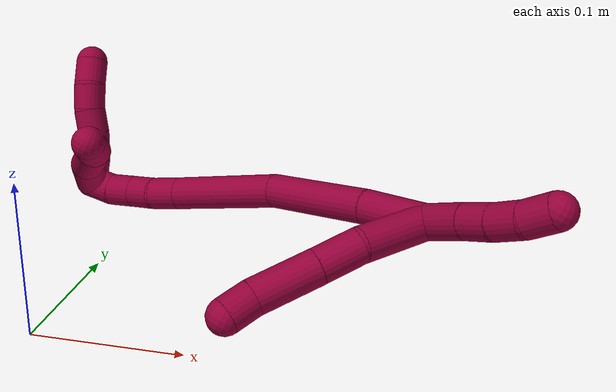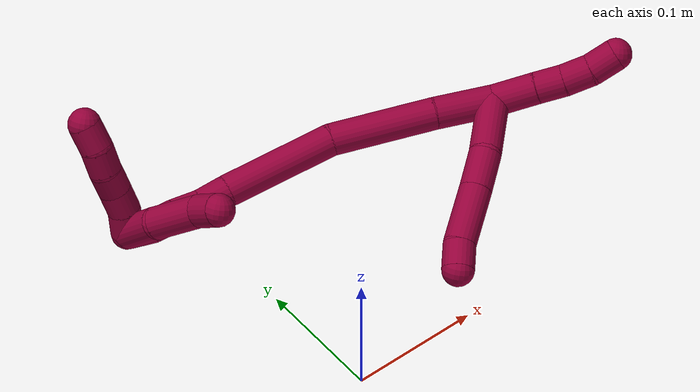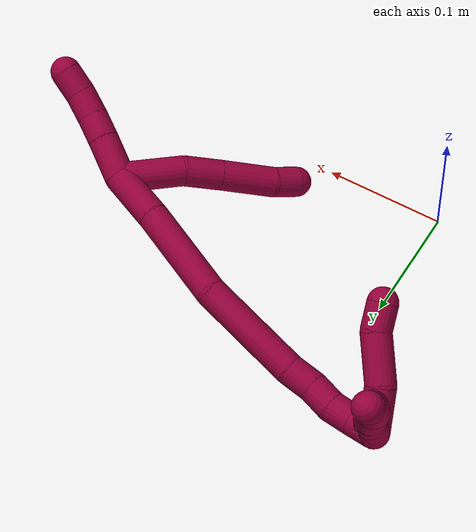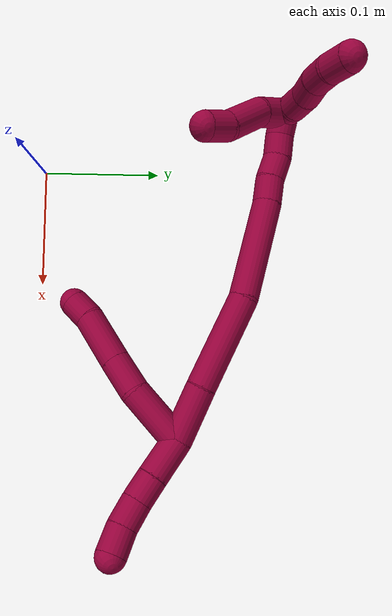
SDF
<sdf version="1.7">
 <world name="default">
  <model name="8">
   <static>0</static>
   <link name="8">
    <collision name="collision-cylinder-e_1_2_8">
     <pose>-0.002844 -0.02132 -0.014574 2.17042 -0.109704 -0.207339</pose>
     <geometry><cylinder><radius>0.0125</radius><length>0.051962</length></cylinder></geometry>
     <surface>
      <friction><ode><mu>1.16</mu><mu2>1.16</mu2><slip1>0</slip1><slip2>0</slip2></ode></friction>
      <contact><ode><kp>1e+06</kp><kd>1</kd><max_vel>0</max_vel><min_depth>0.001</min_depth></ode></contact>
     </surface>
    </collision>
    <visual name="visual-cylinder-e_1_2_8">
     <pose>-0.002844 -0.02132 -0.014574 2.17042 -0.109704 -0.207339</pose>
     <geometry><cylinder><radius>0.0125</radius><length>0.051962</length></cylinder></geometry>
     <material><ambient>0.584314 0 0.227451 1</ambient></material>
    </visual>
    <collision name="collision-cylinder-e_2_8_9">
     <pose>-0.008445 -0.053019 -0.040464 2.39934 -0.177556 -0.449719</pose>
     <geometry><cylinder><radius>0.0125</radius><length>0.031203</length></cylinder></geometry>
     <surface>
      <friction><ode><mu>1.16</mu><mu2>1.16</mu2><slip1>0</slip1><slip2>0</slip2></ode></friction>
      <contact><ode><kp>1e+06</kp><kd>1</kd><max_vel>0</max_vel><min_depth>0.001</min_depth></ode></contact>
     </surface>
    </collision>
    <visual name="visual-cylinder-e_2_8_9">
     <pose>-0.008445 -0.053019 -0.040464 2.39934 -0.177556 -0.449719</pose>
     <geometry><cylinder><radius>0.0125</radius><length>0.031203</length></cylinder></geometry>
     <material><ambient>0.584314 0 0.227451 1</ambient></material>
    </visual>
    <collision name="collision-cylinder-e_3_9_10">
     <pose>-0.015796 -0.078582 -0.068397 2.40125 -0.201403 -0.509449</pose>
     <geometry><cylinder><radius>0.0125</radius><length>0.045945</length></cylinder></geometry>
     <surface>
      <friction><ode><mu>1.16</mu><mu2>1.16</mu2><slip1>0</slip1><slip2>0</slip2></ode></friction>
      <contact><ode><kp>1e+06</kp><kd>1</kd><max_vel>0</max_vel><min_depth>0.001</min_depth></ode></contact>
     </surface>
    </collision>
    <visual name="visual-cylinder-e_3_9_10">
     <pose>-0.015796 -0.078582 -0.068397 2.40125 -0.201403 -0.509449</pose>
     <geometry><cylinder><radius>0.0125</radius><length>0.045945</length></cylinder></geometry>
     <material><ambient>0.584314 0 0.227451 1</ambient></material>
    </visual>
    <collision name="collision-cylinder-e_4_10_6">
     <pose>-0.020328 -0.100914 -0.092628 2.38774 0.00603 0.015233</pose>
     <geometry><cylinder><radius>0.0125</radius><length>0.02089</length></cylinder></geometry>
     <surface>
      <friction><ode><mu>1.16</mu><mu2>1.16</mu2><slip1>0</slip1><slip2>0</slip2></ode></friction>
      <contact><ode><kp>1e+06</kp><kd>1</kd><max_vel>0</max_vel><min_depth>0.001</min_depth></ode></contact>
     </surface>
    </collision>
    <visual name="visual-cylinder-e_4_10_6">
     <pose>-0.020328 -0.100914 -0.092628 2.38774 0.00603 0.015233</pose>
     <geometry><cylinder><radius>0.0125</radius><length>0.02089</length></cylinder></geometry>
     <material><ambient>0.584314 0 0.227451 1</ambient></material>
    </visual>
    <collision name="collision-cylinder-e_1_2_11">
     <pose>0.015138 -0.002408 0.008024 0.291522 1.06535 0.172655</pose>
     <geometry><cylinder><radius>0.0125</radius><length>0.034603</length></cylinder></geometry>
     <surface>
      <friction><ode><mu>1.16</mu><mu2>1.16</mu2><slip1>0</slip1><slip2>0</slip2></ode></friction>
      <contact><ode><kp>1e+06</kp><kd>1</kd><max_vel>0</max_vel><min_depth>0.001</min_depth></ode></contact>
     </surface>
    </collision>
    <visual name="visual-cylinder-e_1_2_11">
     <pose>0.015138 -0.002408 0.008024 0.291522 1.06535 0.172655</pose>
     <geometry><cylinder><radius>0.0125</radius><length>0.034603</length></cylinder></geometry>
     <material><ambient>0.584314 0 0.227451 1</ambient></material>
    </visual>
    <collision name="collision-cylinder-e_2_11_12">
     <pose>0.039886 -0.005932 0.020747 0.233272 1.10505 0.144237</pose>
     <geometry><cylinder><radius>0.0125</radius><length>0.021511</length></cylinder></geometry>
     <surface>
      <friction><ode><mu>1.16</mu><mu2>1.16</mu2><slip1>0</slip1><slip2>0</slip2></ode></friction>
      <contact><ode><kp>1e+06</kp><kd>1</kd><max_vel>0</max_vel><min_depth>0.001</min_depth></ode></contact>
     </surface>
    </collision>
    <visual name="visual-cylinder-e_2_11_12">
     <pose>0.039886 -0.005932 0.020747 0.233272 1.10505 0.144237</pose>
     <geometry><cylinder><radius>0.0125</radius><length>0.021511</length></cylinder></geometry>
     <material><ambient>0.584314 0 0.227451 1</ambient></material>
    </visual>
    <collision name="collision-cylinder-e_3_12_13">
     <pose>0.058772 -0.008003 0.031245 0.163165 1.00613 0.089927</pose>
     <geometry><cylinder><radius>0.0125</radius><length>0.021962</length></cylinder></geometry>
     <surface>
      <friction><ode><mu>1.16</mu><mu2>1.16</mu2><slip1>0</slip1><slip2>0</slip2></ode></friction>
      <contact><ode><kp>1e+06</kp><kd>1</kd><max_vel>0</max_vel><min_depth>0.001</min_depth></ode></contact>
     </surface>
    </collision>
    <visual name="visual-cylinder-e_3_12_13">
     <pose>0.058772 -0.008003 0.031245 0.163165 1.00613 0.089927</pose>
     <geometry><cylinder><radius>0.0125</radius><length>0.021962</length></cylinder></geometry>
     <material><ambient>0.584314 0 0.227451 1</ambient></material>
    </visual>
    <collision name="collision-cylinder-e_4_13_5">
     <pose>0.076181 -0.009101 0.044392 0.019486 0.835878 0.008654</pose>
     <geometry><cylinder><radius>0.0125</radius><length>0.021924</length></cylinder></geometry>
     <surface>
      <friction><ode><mu>1.16</mu><mu2>1.16</mu2><slip1>0</slip1><slip2>0</slip2></ode></friction>
      <contact><ode><kp>1e+06</kp><kd>1</kd><max_vel>0</max_vel><min_depth>0.001</min_depth></ode></contact>
     </surface>
    </collision>
    <visual name="visual-cylinder-e_4_13_5">
     <pose>0.076181 -0.009101 0.044392 0.019486 0.835878 0.008654</pose>
     <geometry><cylinder><radius>0.0125</radius><length>0.021924</length></cylinder></geometry>
     <material><ambient>0.584314 0 0.227451 1</ambient></material>
    </visual>
    <collision name="collision-cylinder-e_1_2_14">
     <pose>-0.022054 -0.003901 -0.006882 2.62593 -1.22638 -2.42449</pose>
     <geometry><cylinder><radius>0.0125</radius><length>0.046859</length></cylinder></geometry>
     <surface>
      <friction><ode><mu>1.16</mu><mu2>1.16</mu2><slip1>0</slip1><slip2>0</slip2></ode></friction>
      <contact><ode><kp>1e+06</kp><kd>1</kd><max_vel>0</max_vel><min_depth>0.001</min_depth></ode></contact>
     </surface>
    </collision>
    <visual name="visual-cylinder-e_1_2_14">
     <pose>-0.022054 -0.003901 -0.006882 2.62593 -1.22638 -2.42449</pose>
     <geometry><cylinder><radius>0.0125</radius><length>0.046859</length></cylinder></geometry>
     <material><ambient>0.584314 0 0.227451 1</ambient></material>
    </visual>
    <collision name="collision-cylinder-e_2_14_15">
     <pose>-0.081858 -0.012247 -0.028095 2.84085 -1.1925 -2.70228</pose>
     <geometry><cylinder><radius>0.0125</radius><length>0.081246</length></cylinder></geometry>
     <surface>
      <friction><ode><mu>1.16</mu><mu2>1.16</mu2><slip1>0</slip1><slip2>0</slip2></ode></friction>
      <contact><ode><kp>1e+06</kp><kd>1</kd><max_vel>0</max_vel><min_depth>0.001</min_depth></ode></contact>
     </surface>
    </collision>
    <visual name="visual-cylinder-e_2_14_15">
     <pose>-0.081858 -0.012247 -0.028095 2.84085 -1.1925 -2.70228</pose>
     <geometry><cylinder><radius>0.0125</radius><length>0.081246</length></cylinder></geometry>
     <material><ambient>0.584314 0 0.227451 1</ambient></material>
    </visual>
    <collision name="collision-cylinder-e_3_15_16">
     <pose>-0.156035 -0.026321 -0.064707 2.73365 -0.982994 -2.40413</pose>
     <geometry><cylinder><radius>0.0125</radius><length>0.087545</length></cylinder></geometry>
     <surface>
      <friction><ode><mu>1.16</mu><mu2>1.16</mu2><slip1>0</slip1><slip2>0</slip2></ode></friction>
      <contact><ode><kp>1e+06</kp><kd>1</kd><max_vel>0</max_vel><min_depth>0.001</min_depth></ode></contact>
     </surface>
    </collision>
    <visual name="visual-cylinder-e_3_15_16">
     <pose>-0.156035 -0.026321 -0.064707 2.73365 -0.982994 -2.40413</pose>
     <geometry><cylinder><radius>0.0125</radius><length>0.087545</length></cylinder></geometry>
     <material><ambient>0.584314 0 0.227451 1</ambient></material>
    </visual>
    <collision name="collision-cylinder-e_4_16_17">
     <pose>-0.20156 -0.039877 -0.092717 2.54073 -0.918874 -2.02268</pose>
     <geometry><cylinder><radius>0.0125</radius><length>0.022895</length></cylinder></geometry>
     <surface>
      <friction><ode><mu>1.16</mu><mu2>1.16</mu2><slip1>0</slip1><slip2>0</slip2></ode></friction>
      <contact><ode><kp>1e+06</kp><kd>1</kd><max_vel>0</max_vel><min_depth>0.001</min_depth></ode></contact>
     </surface>
    </collision>
    <visual name="visual-cylinder-e_4_16_17">
     <pose>-0.20156 -0.039877 -0.092717 2.54073 -0.918874 -2.02268</pose>
     <geometry><cylinder><radius>0.0125</radius><length>0.022895</length></cylinder></geometry>
     <material><ambient>0.584314 0 0.227451 1</ambient></material>
    </visual>
    <collision name="collision-cylinder-e_5_17_18">
     <pose>-0.219949 -0.045842 -0.102825 2.70596 -1.09127 -2.44243</pose>
     <geometry><cylinder><radius>0.0125</radius><length>0.020941</length></cylinder></geometry>
     <surface>
      <friction><ode><mu>1.16</mu><mu2>1.16</mu2><slip1>0</slip1><slip2>0</slip2></ode></friction>
      <contact><ode><kp>1e+06</kp><kd>1</kd><max_vel>0</max_vel><min_depth>0.001</min_depth></ode></contact>
     </surface>
    </collision>
    <visual name="visual-cylinder-e_5_17_18">
     <pose>-0.219949 -0.045842 -0.102825 2.70596 -1.09127 -2.44243</pose>
     <geometry><cylinder><radius>0.0125</radius><length>0.020941</length></cylinder></geometry>
     <material><ambient>0.584314 0 0.227451 1</ambient></material>
    </visual>
    <collision name="collision-cylinder-e_6_18_19">
     <pose>-0.237337 -0.052107 -0.111426 2.35568 -0.935249 -1.76693</pose>
     <geometry><cylinder><radius>0.0125</radius><length>0.020127</length></cylinder></geometry>
     <surface>
      <friction><ode><mu>1.16</mu><mu2>1.16</mu2><slip1>0</slip1><slip2>0</slip2></ode></friction>
      <contact><ode><kp>1e+06</kp><kd>1</kd><max_vel>0</max_vel><min_depth>0.001</min_depth></ode></contact>
     </surface>
    </collision>
    <visual name="visual-cylinder-e_6_18_19">
     <pose>-0.237337 -0.052107 -0.111426 2.35568 -0.935249 -1.76693</pose>
     <geometry><cylinder><radius>0.0125</radius><length>0.020127</length></cylinder></geometry>
     <material><ambient>0.584314 0 0.227451 1</ambient></material>
    </visual>
    <collision name="collision-cylinder-e_7_19_1">
     <pose>-0.254367 -0.060875 -0.117522 1.96205 -1.06787 -1.44718</pose>
     <geometry><cylinder><radius>0.0125</radius><length>0.020387</length></cylinder></geometry>
     <surface>
      <friction><ode><mu>1.16</mu><mu2>1.16</mu2><slip1>0</slip1><slip2>0</slip2></ode></friction>
      <contact><ode><kp>1e+06</kp><kd>1</kd><max_vel>0</max_vel><min_depth>0.001</min_depth></ode></contact>
     </surface>
    </collision>
    <visual name="visual-cylinder-e_7_19_1">
     <pose>-0.254367 -0.060875 -0.117522 1.96205 -1.06787 -1.44718</pose>
     <geometry><cylinder><radius>0.0125</radius><length>0.020387</length></cylinder></geometry>
     <material><ambient>0.584314 0 0.227451 1</ambient></material>
    </visual>
    <collision name="collision-cylinder-e_1_1_20">
     <pose>-0.25394 -0.077961 -0.109797 0.917654 0.534899 0.269084</pose>
     <geometry><cylinder><radius>0.0125</radius><length>0.036718</length></cylinder></geometry>
     <surface>
      <friction><ode><mu>1.16</mu><mu2>1.16</mu2><slip1>0</slip1><slip2>0</slip2></ode></friction>
      <contact><ode><kp>1e+06</kp><kd>1</kd><max_vel>0</max_vel><min_depth>0.001</min_depth></ode></contact>
     </surface>
    </collision>
    <visual name="visual-cylinder-e_1_1_20">
     <pose>-0.25394 -0.077961 -0.109797 0.917654 0.534899 0.269084</pose>
     <geometry><cylinder><radius>0.0125</radius><length>0.036718</length></cylinder></geometry>
     <material><ambient>0.584314 0 0.227451 1</ambient></material>
    </visual>
    <collision name="collision-cylinder-e_2_20_21">
     <pose>-0.230018 -0.10046 -0.089809 0.764031 0.791382 0.332543</pose>
     <geometry><cylinder><radius>0.0125</radius><length>0.040948</length></cylinder></geometry>
     <surface>
      <friction><ode><mu>1.16</mu><mu2>1.16</mu2><slip1>0</slip1><slip2>0</slip2></ode></friction>
      <contact><ode><kp>1e+06</kp><kd>1</kd><max_vel>0</max_vel><min_depth>0.001</min_depth></ode></contact>
     </surface>
    </collision>
    <visual name="visual-cylinder-e_2_20_21">
     <pose>-0.230018 -0.10046 -0.089809 0.764031 0.791382 0.332543</pose>
     <geometry><cylinder><radius>0.0125</radius><length>0.040948</length></cylinder></geometry>
     <material><ambient>0.584314 0 0.227451 1</ambient></material>
    </visual>
    <collision name="collision-cylinder-e_3_21_4">
     <pose>-0.209115 -0.118632 -0.075293 1.10546 0.603682 0.379505</pose>
     <geometry><cylinder><radius>0.0125</radius><length>0.022334</length></cylinder></geometry>
     <surface>
      <friction><ode><mu>1.16</mu><mu2>1.16</mu2><slip1>0</slip1><slip2>0</slip2></ode></friction>
      <contact><ode><kp>1e+06</kp><kd>1</kd><max_vel>0</max_vel><min_depth>0.001</min_depth></ode></contact>
     </surface>
    </collision>
    <visual name="visual-cylinder-e_3_21_4">
     <pose>-0.209115 -0.118632 -0.075293 1.10546 0.603682 0.379505</pose>
     <geometry><cylinder><radius>0.0125</radius><length>0.022334</length></cylinder></geometry>
     <material><ambient>0.584314 0 0.227451 1</ambient></material>
    </visual>
    <collision name="collision-cylinder-e_1_1_22">
     <pose>-0.265703 -0.067638 -0.109947 0.230875 -0.242808 -0.028292</pose>
     <geometry><cylinder><radius>0.0125</radius><length>0.02</length></cylinder></geometry>
     <surface>
      <friction><ode><mu>1.16</mu><mu2>1.16</mu2><slip1>0</slip1><slip2>0</slip2></ode></friction>
      <contact><ode><kp>1e+06</kp><kd>1</kd><max_vel>0</max_vel><min_depth>0.001</min_depth></ode></contact>
     </surface>
    </collision>
    <visual name="visual-cylinder-e_1_1_22">
     <pose>-0.265703 -0.067638 -0.109947 0.230875 -0.242808 -0.028292</pose>
     <geometry><cylinder><radius>0.0125</radius><length>0.02</length></cylinder></geometry>
     <material><ambient>0.584314 0 0.227451 1</ambient></material>
    </visual>
    <collision name="collision-cylinder-e_2_22_23">
     <pose>-0.272865 -0.072159 -0.092007 0.264495 -0.49578 -0.06731</pose>
     <geometry><cylinder><radius>0.0125</radius><length>0.02</length></cylinder></geometry>
     <surface>
      <friction><ode><mu>1.16</mu><mu2>1.16</mu2><slip1>0</slip1><slip2>0</slip2></ode></friction>
      <contact><ode><kp>1e+06</kp><kd>1</kd><max_vel>0</max_vel><min_depth>0.001</min_depth></ode></contact>
     </surface>
    </collision>
    <visual name="visual-cylinder-e_2_22_23">
     <pose>-0.272865 -0.072159 -0.092007 0.264495 -0.49578 -0.06731</pose>
     <geometry><cylinder><radius>0.0125</radius><length>0.02</length></cylinder></geometry>
     <material><ambient>0.584314 0 0.227451 1</ambient></material>
    </visual>
    <collision name="collision-cylinder-e_3_23_24">
     <pose>-0.281999 -0.078378 -0.075426 0.451133 -0.453047 -0.105678</pose>
     <geometry><cylinder><radius>0.0125</radius><length>0.02</length></cylinder></geometry>
     <surface>
      <friction><ode><mu>1.16</mu><mu2>1.16</mu2><slip1>0</slip1><slip2>0</slip2></ode></friction>
      <contact><ode><kp>1e+06</kp><kd>1</kd><max_vel>0</max_vel><min_depth>0.001</min_depth></ode></contact>
     </surface>
    </collision>
    <visual name="visual-cylinder-e_3_23_24">
     <pose>-0.281999 -0.078378 -0.075426 0.451133 -0.453047 -0.105678</pose>
     <geometry><cylinder><radius>0.0125</radius><length>0.02</length></cylinder></geometry>
     <material><ambient>0.584314 0 0.227451 1</ambient></material>
    </visual>
    <collision name="collision-cylinder-e_4_24_25">
     <pose>-0.290582 -0.084445 -0.058519 0.238914 -0.434072 -0.052923</pose>
     <geometry><cylinder><radius>0.0125</radius><length>0.02</length></cylinder></geometry>
     <surface>
      <friction><ode><mu>1.16</mu><mu2>1.16</mu2><slip1>0</slip1><slip2>0</slip2></ode></friction>
      <contact><ode><kp>1e+06</kp><kd>1</kd><max_vel>0</max_vel><min_depth>0.001</min_depth></ode></contact>
     </surface>
    </collision>
    <visual name="visual-cylinder-e_4_24_25">
     <pose>-0.290582 -0.084445 -0.058519 0.238914 -0.434072 -0.052923</pose>
     <geometry><cylinder><radius>0.0125</radius><length>0.02</length></cylinder></geometry>
     <material><ambient>0.584314 0 0.227451 1</ambient></material>
    </visual>
    <collision name="collision-cylinder-e_5_25_3">
     <pose>-0.300287 -0.086772 -0.041354 0.0215 -0.582307 -0.006443</pose>
     <geometry><cylinder><radius>0.0125</radius><length>0.02</length></cylinder></geometry>
     <surface>
      <friction><ode><mu>1.16</mu><mu2>1.16</mu2><slip1>0</slip1><slip2>0</slip2></ode></friction>
      <contact><ode><kp>1e+06</kp><kd>1</kd><max_vel>0</max_vel><min_depth>0.001</min_depth></ode></contact>
     </surface>
    </collision>
    <visual name="visual-cylinder-e_5_25_3">
     <pose>-0.300287 -0.086772 -0.041354 0.0215 -0.582307 -0.006443</pose>
     <geometry><cylinder><radius>0.0125</radius><length>0.02</length></cylinder></geometry>
     <material><ambient>0.584314 0 0.227451 1</ambient></material>
    </visual>
    <collision name="collision-sphere-3">
     <pose>-0.305786 -0.086951 -0.033004 0 -0 0</pose>
     <geometry><sphere><radius>0.0125</radius></sphere></geometry>
     <surface>
      <friction><ode><mu>1.16</mu><mu2>1.16</mu2><slip1>0</slip1><slip2>0</slip2></ode></friction>
      <contact><ode><kp>1e+06</kp><kd>1</kd><max_vel>0</max_vel><min_depth>0.001</min_depth></ode></contact>
     </surface>
    </collision>
    <visual name="visual-sphere-3">
     <pose>-0.305786 -0.086951 -0.033004 0 -0 0</pose>
     <geometry><sphere><radius>0.0125</radius></sphere></geometry>
     <material><ambient>0.584314 0 0.227451 1</ambient></material>
    </visual>
    <collision name="collision-sphere-25">
     <pose>-0.294787 -0.086592 -0.049704 0 -0 0</pose>
     <geometry><sphere><radius>0.0125</radius></sphere></geometry>
     <surface>
      <friction><ode><mu>1.16</mu><mu2>1.16</mu2><slip1>0</slip1><slip2>0</slip2></ode></friction>
      <contact><ode><kp>1e+06</kp><kd>1</kd><max_vel>0</max_vel><min_depth>0.001</min_depth></ode></contact>
     </surface>
    </collision>
    <visual name="visual-sphere-25">
     <pose>-0.294787 -0.086592 -0.049704 0 -0 0</pose>
     <geometry><sphere><radius>0.0125</radius></sphere></geometry>
     <material><ambient>0.584314 0 0.227451 1</ambient></material>
    </visual>
    <collision name="collision-sphere-24">
     <pose>-0.286376 -0.082298 -0.067334 0 -0 0</pose>
     <geometry><sphere><radius>0.0125</radius></sphere></geometry>
     <surface>
      <friction><ode><mu>1.16</mu><mu2>1.16</mu2><slip1>0</slip1><slip2>0</slip2></ode></friction>
      <contact><ode><kp>1e+06</kp><kd>1</kd><max_vel>0</max_vel><min_depth>0.001</min_depth></ode></contact>
     </surface>
    </collision>
    <visual name="visual-sphere-24">
     <pose>-0.286376 -0.082298 -0.067334 0 -0 0</pose>
     <geometry><sphere><radius>0.0125</radius></sphere></geometry>
     <material><ambient>0.584314 0 0.227451 1</ambient></material>
    </visual>
    <collision name="collision-sphere-23">
     <pose>-0.277622 -0.074458 -0.083517 0 -0 0</pose>
     <geometry><sphere><radius>0.0125</radius></sphere></geometry>
     <surface>
      <friction><ode><mu>1.16</mu><mu2>1.16</mu2><slip1>0</slip1><slip2>0</slip2></ode></friction>
      <contact><ode><kp>1e+06</kp><kd>1</kd><max_vel>0</max_vel><min_depth>0.001</min_depth></ode></contact>
     </surface>
    </collision>
    <visual name="visual-sphere-23">
     <pose>-0.277622 -0.074458 -0.083517 0 -0 0</pose>
     <geometry><sphere><radius>0.0125</radius></sphere></geometry>
     <material><ambient>0.584314 0 0.227451 1</ambient></material>
    </visual>
    <collision name="collision-sphere-22">
     <pose>-0.268107 -0.069859 -0.100497 0 -0 0</pose>
     <geometry><sphere><radius>0.0125</radius></sphere></geometry>
     <surface>
      <friction><ode><mu>1.16</mu><mu2>1.16</mu2><slip1>0</slip1><slip2>0</slip2></ode></friction>
      <contact><ode><kp>1e+06</kp><kd>1</kd><max_vel>0</max_vel><min_depth>0.001</min_depth></ode></contact>
     </surface>
    </collision>
    <visual name="visual-sphere-22">
     <pose>-0.268107 -0.069859 -0.100497 0 -0 0</pose>
     <geometry><sphere><radius>0.0125</radius></sphere></geometry>
     <material><ambient>0.584314 0 0.227451 1</ambient></material>
    </visual>
    <collision name="collision-sphere-4">
     <pose>-0.202776 -0.126848 -0.071168 0 -0 0</pose>
     <geometry><sphere><radius>0.0125</radius></sphere></geometry>
     <surface>
      <friction><ode><mu>1.16</mu><mu2>1.16</mu2><slip1>0</slip1><slip2>0</slip2></ode></friction>
      <contact><ode><kp>1e+06</kp><kd>1</kd><max_vel>0</max_vel><min_depth>0.001</min_depth></ode></contact>
     </surface>
    </collision>
    <visual name="visual-sphere-4">
     <pose>-0.202776 -0.126848 -0.071168 0 -0 0</pose>
     <geometry><sphere><radius>0.0125</radius></sphere></geometry>
     <material><ambient>0.584314 0 0.227451 1</ambient></material>
    </visual>
    <collision name="collision-sphere-21">
     <pose>-0.215454 -0.110416 -0.079418 0 -0 0</pose>
     <geometry><sphere><radius>0.0125</radius></sphere></geometry>
     <surface>
      <friction><ode><mu>1.16</mu><mu2>1.16</mu2><slip1>0</slip1><slip2>0</slip2></ode></friction>
      <contact><ode><kp>1e+06</kp><kd>1</kd><max_vel>0</max_vel><min_depth>0.001</min_depth></ode></contact>
     </surface>
    </collision>
    <visual name="visual-sphere-21">
     <pose>-0.215454 -0.110416 -0.079418 0 -0 0</pose>
     <geometry><sphere><radius>0.0125</radius></sphere></geometry>
     <material><ambient>0.584314 0 0.227451 1</ambient></material>
    </visual>
    <collision name="collision-sphere-20">
     <pose>-0.244581 -0.090505 -0.100199 0 -0 0</pose>
     <geometry><sphere><radius>0.0125</radius></sphere></geometry>
     <surface>
      <friction><ode><mu>1.16</mu><mu2>1.16</mu2><slip1>0</slip1><slip2>0</slip2></ode></friction>
      <contact><ode><kp>1e+06</kp><kd>1</kd><max_vel>0</max_vel><min_depth>0.001</min_depth></ode></contact>
     </surface>
    </collision>
    <visual name="visual-sphere-20">
     <pose>-0.244581 -0.090505 -0.100199 0 -0 0</pose>
     <geometry><sphere><radius>0.0125</radius></sphere></geometry>
     <material><ambient>0.584314 0 0.227451 1</ambient></material>
    </visual>
    <collision name="collision-sphere-11">
     <pose>0.030276 -0.004815 0.016048 0 -0 0</pose>
     <geometry><sphere><radius>0.0125</radius></sphere></geometry>
     <surface>
      <friction><ode><mu>1.16</mu><mu2>1.16</mu2><slip1>0</slip1><slip2>0</slip2></ode></friction>
      <contact><ode><kp>1e+06</kp><kd>1</kd><max_vel>0</max_vel><min_depth>0.001</min_depth></ode></contact>
     </surface>
    </collision>
    <visual name="visual-sphere-11">
     <pose>0.030276 -0.004815 0.016048 0 -0 0</pose>
     <geometry><sphere><radius>0.0125</radius></sphere></geometry>
     <material><ambient>0.584314 0 0.227451 1</ambient></material>
    </visual>
    <collision name="collision-sphere-6">
     <pose>-0.020265 -0.108063 -0.100243 0 -0 0</pose>
     <geometry><sphere><radius>0.0125</radius></sphere></geometry>
     <surface>
      <friction><ode><mu>1.16</mu><mu2>1.16</mu2><slip1>0</slip1><slip2>0</slip2></ode></friction>
      <contact><ode><kp>1e+06</kp><kd>1</kd><max_vel>0</max_vel><min_depth>0.001</min_depth></ode></contact>
     </surface>
    </collision>
    <visual name="visual-sphere-6">
     <pose>-0.020265 -0.108063 -0.100243 0 -0 0</pose>
     <geometry><sphere><radius>0.0125</radius></sphere></geometry>
     <material><ambient>0.584314 0 0.227451 1</ambient></material>
    </visual>
    <collision name="collision-sphere-10">
     <pose>-0.020391 -0.093765 -0.085013 0 -0 0</pose>
     <geometry><sphere><radius>0.0125</radius></sphere></geometry>
     <surface>
      <friction><ode><mu>1.16</mu><mu2>1.16</mu2><slip1>0</slip1><slip2>0</slip2></ode></friction>
      <contact><ode><kp>1e+06</kp><kd>1</kd><max_vel>0</max_vel><min_depth>0.001</min_depth></ode></contact>
     </surface>
    </collision>
    <visual name="visual-sphere-10">
     <pose>-0.020391 -0.093765 -0.085013 0 -0 0</pose>
     <geometry><sphere><radius>0.0125</radius></sphere></geometry>
     <material><ambient>0.584314 0 0.227451 1</ambient></material>
    </visual>
    <collision name="collision-sphere-9">
     <pose>-0.0112 -0.0634 -0.051781 0 -0 0</pose>
     <geometry><sphere><radius>0.0125</radius></sphere></geometry>
     <surface>
      <friction><ode><mu>1.16</mu><mu2>1.16</mu2><slip1>0</slip1><slip2>0</slip2></ode></friction>
      <contact><ode><kp>1e+06</kp><kd>1</kd><max_vel>0</max_vel><min_depth>0.001</min_depth></ode></contact>
     </surface>
    </collision>
    <visual name="visual-sphere-9">
     <pose>-0.0112 -0.0634 -0.051781 0 -0 0</pose>
     <geometry><sphere><radius>0.0125</radius></sphere></geometry>
     <material><ambient>0.584314 0 0.227451 1</ambient></material>
    </visual>
    <collision name="collision-sphere-2">
     <geometry><sphere><radius>0.0125</radius></sphere></geometry>
     <surface>
      <friction><ode><mu>1.16</mu><mu2>1.16</mu2><slip1>0</slip1><slip2>0</slip2></ode></friction>
      <contact><ode><kp>1e+06</kp><kd>1</kd><max_vel>0</max_vel><min_depth>0.001</min_depth></ode></contact>
     </surface>
    </collision>
    <visual name="visual-sphere-2">
     <geometry><sphere><radius>0.0125</radius></sphere></geometry>
     <material><ambient>0.584314 0 0.227451 1</ambient></material>
    </visual>
    <collision name="collision-sphere-19">
     <pose>-0.245436 -0.056333 -0.115648 0 -0 0</pose>
     <geometry><sphere><radius>0.0125</radius></sphere></geometry>
     <surface>
      <friction><ode><mu>1.16</mu><mu2>1.16</mu2><slip1>0</slip1><slip2>0</slip2></ode></friction>
      <contact><ode><kp>1e+06</kp><kd>1</kd><max_vel>0</max_vel><min_depth>0.001</min_depth></ode></contact>
     </surface>
    </collision>
    <visual name="visual-sphere-19">
     <pose>-0.245436 -0.056333 -0.115648 0 -0 0</pose>
     <geometry><sphere><radius>0.0125</radius></sphere></geometry>
     <material><ambient>0.584314 0 0.227451 1</ambient></material>
    </visual>
    <collision name="collision-sphere-8">
     <pose>-0.005689 -0.042639 -0.029147 0 -0 0</pose>
     <geometry><sphere><radius>0.0125</radius></sphere></geometry>
     <surface>
      <friction><ode><mu>1.16</mu><mu2>1.16</mu2><slip1>0</slip1><slip2>0</slip2></ode></friction>
      <contact><ode><kp>1e+06</kp><kd>1</kd><max_vel>0</max_vel><min_depth>0.001</min_depth></ode></contact>
     </surface>
    </collision>
    <visual name="visual-sphere-8">
     <pose>-0.005689 -0.042639 -0.029147 0 -0 0</pose>
     <geometry><sphere><radius>0.0125</radius></sphere></geometry>
     <material><ambient>0.584314 0 0.227451 1</ambient></material>
    </visual>
    <collision name="collision-sphere-12">
     <pose>0.049496 -0.007049 0.025446 0 -0 0</pose>
     <geometry><sphere><radius>0.0125</radius></sphere></geometry>
     <surface>
      <friction><ode><mu>1.16</mu><mu2>1.16</mu2><slip1>0</slip1><slip2>0</slip2></ode></friction>
      <contact><ode><kp>1e+06</kp><kd>1</kd><max_vel>0</max_vel><min_depth>0.001</min_depth></ode></contact>
     </surface>
    </collision>
    <visual name="visual-sphere-12">
     <pose>0.049496 -0.007049 0.025446 0 -0 0</pose>
     <geometry><sphere><radius>0.0125</radius></sphere></geometry>
     <material><ambient>0.584314 0 0.227451 1</ambient></material>
    </visual>
    <collision name="collision-sphere-13">
     <pose>0.068048 -0.008958 0.037043 0 -0 0</pose>
     <geometry><sphere><radius>0.0125</radius></sphere></geometry>
     <surface>
      <friction><ode><mu>1.16</mu><mu2>1.16</mu2><slip1>0</slip1><slip2>0</slip2></ode></friction>
      <contact><ode><kp>1e+06</kp><kd>1</kd><max_vel>0</max_vel><min_depth>0.001</min_depth></ode></contact>
     </surface>
    </collision>
    <visual name="visual-sphere-13">
     <pose>0.068048 -0.008958 0.037043 0 -0 0</pose>
     <geometry><sphere><radius>0.0125</radius></sphere></geometry>
     <material><ambient>0.584314 0 0.227451 1</ambient></material>
    </visual>
    <collision name="collision-sphere-5">
     <pose>0.084314 -0.009244 0.051741 0 -0 0</pose>
     <geometry><sphere><radius>0.0125</radius></sphere></geometry>
     <surface>
      <friction><ode><mu>1.16</mu><mu2>1.16</mu2><slip1>0</slip1><slip2>0</slip2></ode></friction>
      <contact><ode><kp>1e+06</kp><kd>1</kd><max_vel>0</max_vel><min_depth>0.001</min_depth></ode></contact>
     </surface>
    </collision>
    <visual name="visual-sphere-5">
     <pose>0.084314 -0.009244 0.051741 0 -0 0</pose>
     <geometry><sphere><radius>0.0125</radius></sphere></geometry>
     <material><ambient>0.584314 0 0.227451 1</ambient></material>
    </visual>
    <collision name="collision-sphere-14">
     <pose>-0.044108 -0.007802 -0.013764 0 -0 0</pose>
     <geometry><sphere><radius>0.0125</radius></sphere></geometry>
     <surface>
      <friction><ode><mu>1.16</mu><mu2>1.16</mu2><slip1>0</slip1><slip2>0</slip2></ode></friction>
      <contact><ode><kp>1e+06</kp><kd>1</kd><max_vel>0</max_vel><min_depth>0.001</min_depth></ode></contact>
     </surface>
    </collision>
    <visual name="visual-sphere-14">
     <pose>-0.044108 -0.007802 -0.013764 0 -0 0</pose>
     <geometry><sphere><radius>0.0125</radius></sphere></geometry>
     <material><ambient>0.584314 0 0.227451 1</ambient></material>
    </visual>
    <collision name="collision-sphere-15">
     <pose>-0.119609 -0.016691 -0.042425 0 -0 0</pose>
     <geometry><sphere><radius>0.0125</radius></sphere></geometry>
     <surface>
      <friction><ode><mu>1.16</mu><mu2>1.16</mu2><slip1>0</slip1><slip2>0</slip2></ode></friction>
      <contact><ode><kp>1e+06</kp><kd>1</kd><max_vel>0</max_vel><min_depth>0.001</min_depth></ode></contact>
     </surface>
    </collision>
    <visual name="visual-sphere-15">
     <pose>-0.119609 -0.016691 -0.042425 0 -0 0</pose>
     <geometry><sphere><radius>0.0125</radius></sphere></geometry>
     <material><ambient>0.584314 0 0.227451 1</ambient></material>
    </visual>
    <collision name="collision-sphere-16">
     <pose>-0.19246 -0.03595 -0.086988 0 -0 0</pose>
     <geometry><sphere><radius>0.0125</radius></sphere></geometry>
     <surface>
      <friction><ode><mu>1.16</mu><mu2>1.16</mu2><slip1>0</slip1><slip2>0</slip2></ode></friction>
      <contact><ode><kp>1e+06</kp><kd>1</kd><max_vel>0</max_vel><min_depth>0.001</min_depth></ode></contact>
     </surface>
    </collision>
    <visual name="visual-sphere-16">
     <pose>-0.19246 -0.03595 -0.086988 0 -0 0</pose>
     <geometry><sphere><radius>0.0125</radius></sphere></geometry>
     <material><ambient>0.584314 0 0.227451 1</ambient></material>
    </visual>
    <collision name="collision-sphere-17">
     <pose>-0.21066 -0.043804 -0.098446 0 -0 0</pose>
     <geometry><sphere><radius>0.0125</radius></sphere></geometry>
     <surface>
      <friction><ode><mu>1.16</mu><mu2>1.16</mu2><slip1>0</slip1><slip2>0</slip2></ode></friction>
      <contact><ode><kp>1e+06</kp><kd>1</kd><max_vel>0</max_vel><min_depth>0.001</min_depth></ode></contact>
     </surface>
    </collision>
    <visual name="visual-sphere-17">
     <pose>-0.21066 -0.043804 -0.098446 0 -0 0</pose>
     <geometry><sphere><radius>0.0125</radius></sphere></geometry>
     <material><ambient>0.584314 0 0.227451 1</ambient></material>
    </visual>
    <collision name="collision-sphere-18">
     <pose>-0.229239 -0.04788 -0.107205 0 -0 0</pose>
     <geometry><sphere><radius>0.0125</radius></sphere></geometry>
     <surface>
      <friction><ode><mu>1.16</mu><mu2>1.16</mu2><slip1>0</slip1><slip2>0</slip2></ode></friction>
      <contact><ode><kp>1e+06</kp><kd>1</kd><max_vel>0</max_vel><min_depth>0.001</min_depth></ode></contact>
     </surface>
    </collision>
    <visual name="visual-sphere-18">
     <pose>-0.229239 -0.04788 -0.107205 0 -0 0</pose>
     <geometry><sphere><radius>0.0125</radius></sphere></geometry>
     <material><ambient>0.584314 0 0.227451 1</ambient></material>
    </visual>
    <collision name="collision-sphere-1">
     <pose>-0.263299 -0.065417 -0.119396 0 -0 0</pose>
     <geometry><sphere><radius>0.0125</radius></sphere></geometry>
     <surface>
      <friction><ode><mu>1.16</mu><mu2>1.16</mu2><slip1>0</slip1><slip2>0</slip2></ode></friction>
      <contact><ode><kp>1e+06</kp><kd>1</kd><max_vel>0</max_vel><min_depth>0.001</min_depth></ode></contact>
     </surface>
    </collision>
    <visual name="visual-sphere-1">
     <pose>-0.263299 -0.065417 -0.119396 0 -0 0</pose>
     <geometry><sphere><radius>0.0125</radius></sphere></geometry>
     <material><ambient>0.584314 0 0.227451 1</ambient></material>
    </visual>
    <inertial>
     <pose>-0.119184 -0.0455 -0.051779 0 -0 0</pose>
     <mass>0.75</mass>
     <inertia><ixx>-5e-05</ixx><ixy>0</ixy><ixz>0</ixz><iyy>6.6e-05</iyy><iyz>0</iyz><izz>0.000151</izz></inertia>
    </inertial>
   </link>
   <pose>0.227439 0.12325 0.04694 -0.477896 0.164897 -0.694204</pose>
  </model>
 </world>
</sdf>
